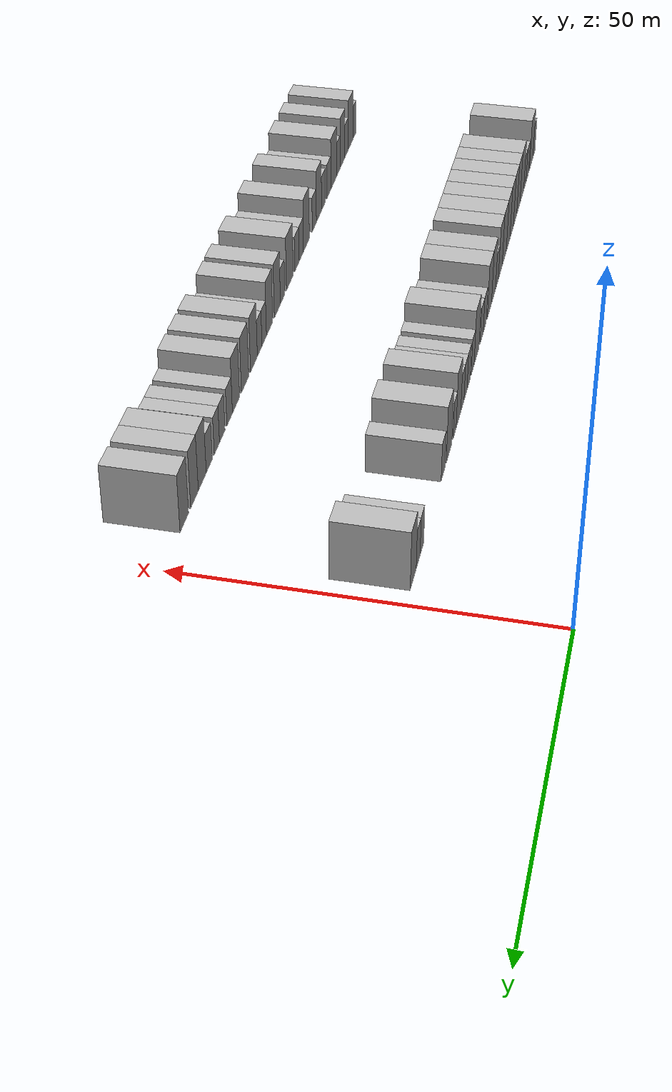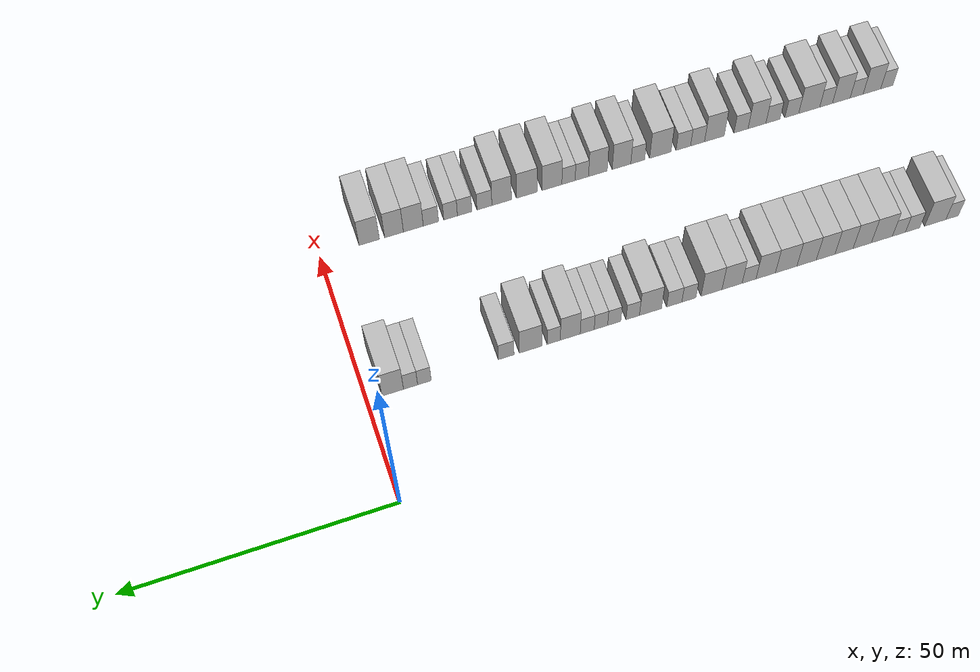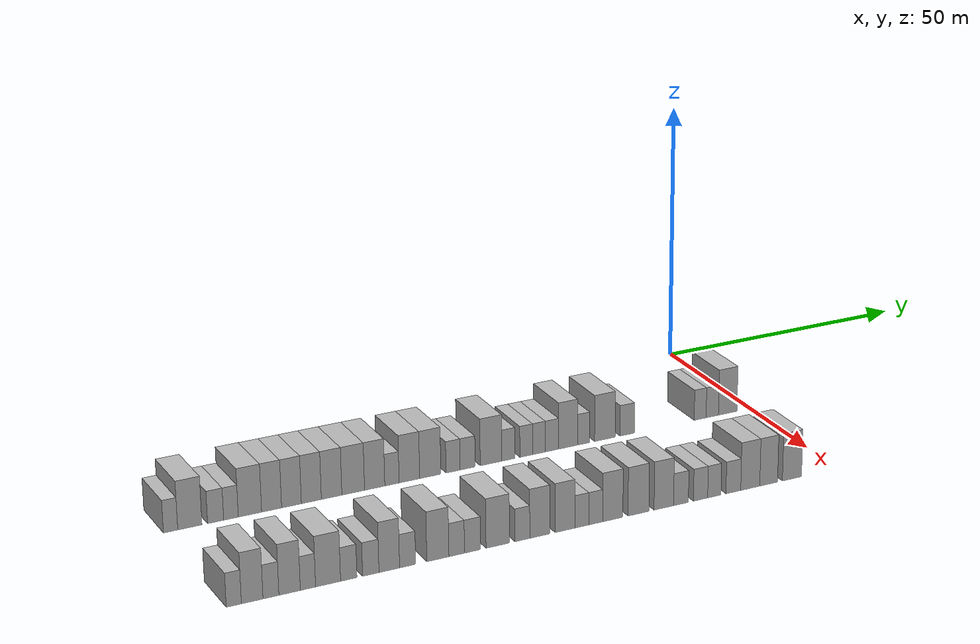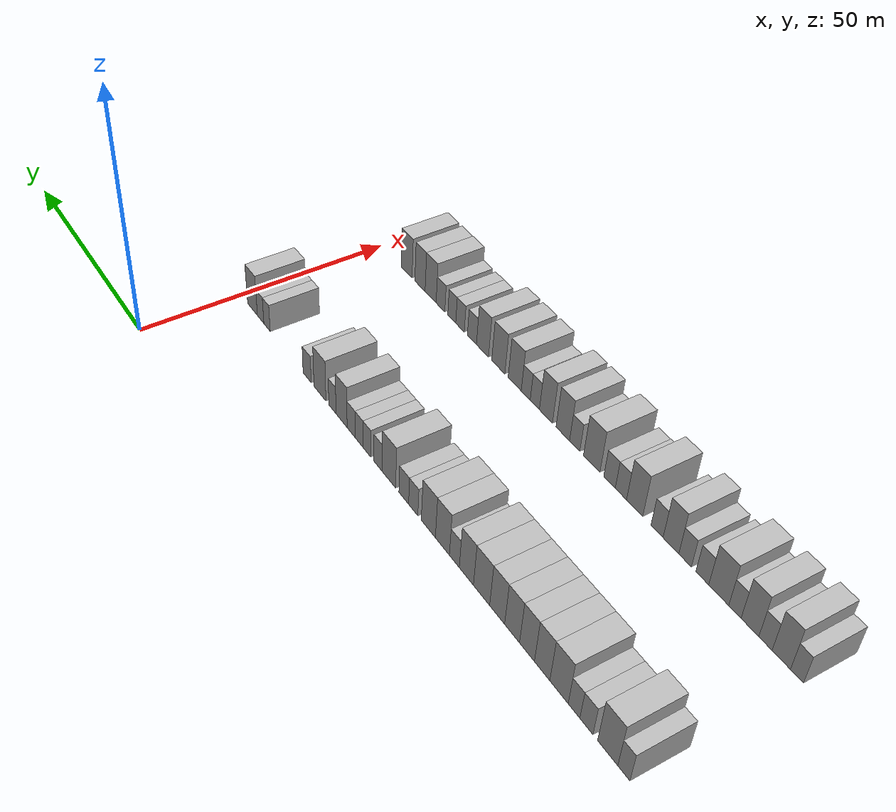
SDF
<sdf version="1.6">
 <world name="default">
  <model name="building_30">
   <static>1</static>
   <pose>25.0000 -113.0198 0 0.000000 0.000000 0.000000</pose>
   <link name="link">
    <pose>0 0 3.00 0 0 0</pose>
    <collision name="collision"><geometry><box><size>10.0000 2.5243 6.0000</size></box></geometry></collision>
    <visual name="visual">
     <cast_shadows>0</cast_shadows>
     <geometry><box><size>10.0000 2.5243 6.0000</size></box></geometry>
     <material>
      <script>
       <uri>model://HANNAS_wall/materials/scripts</uri>
       <uri>model://HANNAS_wall/materials/textures</uri>
       <name>vrc/HANNAS_wall</name>
      </script>
     </material>
    </visual>
   </link>
  </model>
  <model name="building_31">
   <static>1</static>
   <pose>25.0000 -109.6110 0 0.000000 0.000000 0.000000</pose>
   <link name="link">
    <pose>0 0 4.50 0 0 0</pose>
    <collision name="collision"><geometry><box><size>10.0000 4.2934 9.0000</size></box></geometry></collision>
    <visual name="visual">
     <cast_shadows>0</cast_shadows>
     <geometry><box><size>10.0000 4.2934 9.0000</size></box></geometry>
     <material>
      <script>
       <uri>model://HANNAS_wall/materials/scripts</uri>
       <uri>model://HANNAS_wall/materials/textures</uri>
       <name>vrc/HANNAS_wall</name>
      </script>
     </material>
    </visual>
   </link>
  </model>
  <model name="building_32">
   <static>1</static>
   <pose>25.0000 -105.0264 0 0.000000 0.000000 0.000000</pose>
   <link name="link">
    <pose>0 0 3.00 0 0 0</pose>
    <collision name="collision"><geometry><box><size>10.0000 2.8757 6.0000</size></box></geometry></collision>
    <visual name="visual">
     <cast_shadows>0</cast_shadows>
     <geometry><box><size>10.0000 2.8757 6.0000</size></box></geometry>
     <material>
      <script>
       <uri>model://HANNAS_wall/materials/scripts</uri>
       <uri>model://HANNAS_wall/materials/textures</uri>
       <name>vrc/HANNAS_wall</name>
      </script>
     </material>
    </visual>
   </link>
  </model>
  <model name="building_33">
   <static>1</static>
   <pose>25.0000 -102.2784 0 0.000000 0.000000 0.000000</pose>
   <link name="link">
    <pose>0 0 3.00 0 0 0</pose>
    <collision name="collision"><geometry><box><size>10.0000 2.6205 6.0000</size></box></geometry></collision>
    <visual name="visual">
     <cast_shadows>0</cast_shadows>
     <geometry><box><size>10.0000 2.6205 6.0000</size></box></geometry>
     <material>
      <script>
       <uri>model://HANNAS_wall/materials/scripts</uri>
       <uri>model://HANNAS_wall/materials/textures</uri>
       <name>vrc/HANNAS_wall</name>
      </script>
     </material>
    </visual>
   </link>
  </model>
  <model name="building_34">
   <static>1</static>
   <pose>25.0000 -98.8561 0 0.000000 0.000000 0.000000</pose>
   <link name="link">
    <pose>0 0 4.50 0 0 0</pose>
    <collision name="collision"><geometry><box><size>10.0000 4.2241 9.0000</size></box></geometry></collision>
    <visual name="visual">
     <cast_shadows>0</cast_shadows>
     <geometry><box><size>10.0000 4.2241 9.0000</size></box></geometry>
     <material>
      <script>
       <uri>model://HANNAS_wall/materials/scripts</uri>
       <uri>model://HANNAS_wall/materials/textures</uri>
       <name>vrc/HANNAS_wall</name>
      </script>
     </material>
    </visual>
   </link>
  </model>
  <model name="building_35">
   <static>1</static>
   <pose>25.0000 -94.9230 0 0.000000 0.000000 0.000000</pose>
   <link name="link">
    <pose>0 0 4.50 0 0 0</pose>
    <collision name="collision"><geometry><box><size>10.0000 3.6422 9.0000</size></box></geometry></collision>
    <visual name="visual">
     <cast_shadows>0</cast_shadows>
     <geometry><box><size>10.0000 3.6422 9.0000</size></box></geometry>
     <material>
      <script>
       <uri>model://HANNAS_wall/materials/scripts</uri>
       <uri>model://HANNAS_wall/materials/textures</uri>
       <name>vrc/HANNAS_wall</name>
      </script>
     </material>
    </visual>
   </link>
  </model>
  <model name="building_36">
   <static>1</static>
   <pose>25.0000 -91.2906 0 0.000000 0.000000 0.000000</pose>
   <link name="link">
    <pose>0 0 4.50 0 0 0</pose>
    <collision name="collision"><geometry><box><size>10.0000 3.6224 9.0000</size></box></geometry></collision>
    <visual name="visual">
     <cast_shadows>0</cast_shadows>
     <geometry><box><size>10.0000 3.6224 9.0000</size></box></geometry>
     <material>
      <script>
       <uri>model://HANNAS_wall/materials/scripts</uri>
       <uri>model://HANNAS_wall/materials/textures</uri>
       <name>vrc/HANNAS_wall</name>
      </script>
     </material>
    </visual>
   </link>
  </model>
  <model name="building_37">
   <static>1</static>
   <pose>25.0000 -87.6306 0 0.000000 0.000000 0.000000</pose>
   <link name="link">
    <pose>0 0 4.50 0 0 0</pose>
    <collision name="collision"><geometry><box><size>10.0000 3.6977 9.0000</size></box></geometry></collision>
    <visual name="visual">
     <cast_shadows>0</cast_shadows>
     <geometry><box><size>10.0000 3.6977 9.0000</size></box></geometry>
     <material>
      <script>
       <uri>model://HANNAS_wall/materials/scripts</uri>
       <uri>model://HANNAS_wall/materials/textures</uri>
       <name>vrc/HANNAS_wall</name>
      </script>
     </material>
    </visual>
   </link>
  </model>
  <model name="building_38">
   <static>1</static>
   <pose>25.0000 -83.8737 0 0.000000 0.000000 0.000000</pose>
   <link name="link">
    <pose>0 0 4.50 0 0 0</pose>
    <collision name="collision"><geometry><box><size>10.0000 3.8162 9.0000</size></box></geometry></collision>
    <visual name="visual">
     <cast_shadows>0</cast_shadows>
     <geometry><box><size>10.0000 3.8162 9.0000</size></box></geometry>
     <material>
      <script>
       <uri>model://HANNAS_wall/materials/scripts</uri>
       <uri>model://HANNAS_wall/materials/textures</uri>
       <name>vrc/HANNAS_wall</name>
      </script>
     </material>
    </visual>
   </link>
  </model>
  <model name="building_39">
   <static>1</static>
   <pose>25.0000 -79.8392 0 0.000000 0.000000 0.000000</pose>
   <link name="link">
    <pose>0 0 4.50 0 0 0</pose>
    <collision name="collision"><geometry><box><size>10.0000 4.2527 9.0000</size></box></geometry></collision>
    <visual name="visual">
     <cast_shadows>0</cast_shadows>
     <geometry><box><size>10.0000 4.2527 9.0000</size></box></geometry>
     <material>
      <script>
       <uri>model://HANNAS_wall/materials/scripts</uri>
       <uri>model://HANNAS_wall/materials/textures</uri>
       <name>vrc/HANNAS_wall</name>
      </script>
     </material>
    </visual>
   </link>
  </model>
  <model name="building_40">
   <static>1</static>
   <pose>25.0000 -75.8029 0 0.000000 0.000000 0.000000</pose>
   <link name="link">
    <pose>0 0 4.50 0 0 0</pose>
    <collision name="collision"><geometry><box><size>10.0000 3.8200 9.0000</size></box></geometry></collision>
    <visual name="visual">
     <cast_shadows>0</cast_shadows>
     <geometry><box><size>10.0000 3.8200 9.0000</size></box></geometry>
     <material>
      <script>
       <uri>model://HANNAS_wall/materials/scripts</uri>
       <uri>model://HANNAS_wall/materials/textures</uri>
       <name>vrc/HANNAS_wall</name>
      </script>
     </material>
    </visual>
   </link>
  </model>
  <model name="building_41">
   <static>1</static>
   <pose>25.0000 -72.5315 0 0.000000 0.000000 0.000000</pose>
   <link name="link">
    <pose>0 0 3.00 0 0 0</pose>
    <collision name="collision"><geometry><box><size>10.0000 2.7228 6.0000</size></box></geometry></collision>
    <visual name="visual">
     <cast_shadows>0</cast_shadows>
     <geometry><box><size>10.0000 2.7228 6.0000</size></box></geometry>
     <material>
      <script>
       <uri>model://HANNAS_wall/materials/scripts</uri>
       <uri>model://HANNAS_wall/materials/textures</uri>
       <name>vrc/HANNAS_wall</name>
      </script>
     </material>
    </visual>
   </link>
  </model>
  <model name="building_42">
   <static>1</static>
   <pose>25.0000 -69.2048 0 0.000000 0.000000 0.000000</pose>
   <link name="link">
    <pose>0 0 4.50 0 0 0</pose>
    <collision name="collision"><geometry><box><size>10.0000 3.9304 9.0000</size></box></geometry></collision>
    <visual name="visual">
     <cast_shadows>0</cast_shadows>
     <geometry><box><size>10.0000 3.9304 9.0000</size></box></geometry>
     <material>
      <script>
       <uri>model://HANNAS_wall/materials/scripts</uri>
       <uri>model://HANNAS_wall/materials/textures</uri>
       <name>vrc/HANNAS_wall</name>
      </script>
     </material>
    </visual>
   </link>
  </model>
  <model name="building_43">
   <static>1</static>
   <pose>25.0000 -65.2022 0 0.000000 0.000000 0.000000</pose>
   <link name="link">
    <pose>0 0 4.50 0 0 0</pose>
    <collision name="collision"><geometry><box><size>10.0000 4.0749 9.0000</size></box></geometry></collision>
    <visual name="visual">
     <cast_shadows>0</cast_shadows>
     <geometry><box><size>10.0000 4.0749 9.0000</size></box></geometry>
     <material>
      <script>
       <uri>model://HANNAS_wall/materials/scripts</uri>
       <uri>model://HANNAS_wall/materials/textures</uri>
       <name>vrc/HANNAS_wall</name>
      </script>
     </material>
    </visual>
   </link>
  </model>
  <model name="building_44">
   <static>1</static>
   <pose>25.0000 -60.7975 0 0.000000 0.000000 0.000000</pose>
   <link name="link">
    <pose>0 0 3.00 0 0 0</pose>
    <collision name="collision"><geometry><box><size>10.0000 2.7345 6.0000</size></box></geometry></collision>
    <visual name="visual">
     <cast_shadows>0</cast_shadows>
     <geometry><box><size>10.0000 2.7345 6.0000</size></box></geometry>
     <material>
      <script>
       <uri>model://HANNAS_wall/materials/scripts</uri>
       <uri>model://HANNAS_wall/materials/textures</uri>
       <name>vrc/HANNAS_wall</name>
      </script>
     </material>
    </visual>
   </link>
  </model>
  <model name="building_45">
   <static>1</static>
   <pose>25.0000 -57.9662 0 0.000000 0.000000 0.000000</pose>
   <link name="link">
    <pose>0 0 3.00 0 0 0</pose>
    <collision name="collision"><geometry><box><size>10.0000 2.9279 6.0000</size></box></geometry></collision>
    <visual name="visual">
     <cast_shadows>0</cast_shadows>
     <geometry><box><size>10.0000 2.9279 6.0000</size></box></geometry>
     <material>
      <script>
       <uri>model://HANNAS_wall/materials/scripts</uri>
       <uri>model://HANNAS_wall/materials/textures</uri>
       <name>vrc/HANNAS_wall</name>
      </script>
     </material>
    </visual>
   </link>
  </model>
  <model name="building_46">
   <static>1</static>
   <pose>25.0000 -53.3754 0 0.000000 0.000000 0.000000</pose>
   <link name="link">
    <pose>0 0 4.50 0 0 0</pose>
    <collision name="collision"><geometry><box><size>10.0000 4.2537 9.0000</size></box></geometry></collision>
    <visual name="visual">
     <cast_shadows>0</cast_shadows>
     <geometry><box><size>10.0000 4.2537 9.0000</size></box></geometry>
     <material>
      <script>
       <uri>model://HANNAS_wall/materials/scripts</uri>
       <uri>model://HANNAS_wall/materials/textures</uri>
       <name>vrc/HANNAS_wall</name>
      </script>
     </material>
    </visual>
   </link>
  </model>
  <model name="building_47">
   <static>1</static>
   <pose>25.0000 -49.9605 0 0.000000 0.000000 0.000000</pose>
   <link name="link">
    <pose>0 0 3.00 0 0 0</pose>
    <collision name="collision"><geometry><box><size>10.0000 2.5762 6.0000</size></box></geometry></collision>
    <visual name="visual">
     <cast_shadows>0</cast_shadows>
     <geometry><box><size>10.0000 2.5762 6.0000</size></box></geometry>
     <material>
      <script>
       <uri>model://HANNAS_wall/materials/scripts</uri>
       <uri>model://HANNAS_wall/materials/textures</uri>
       <name>vrc/HANNAS_wall</name>
      </script>
     </material>
    </visual>
   </link>
  </model>
  <model name="building_48">
   <static>1</static>
   <pose>25.0000 -46.4089 0 0.000000 0.000000 0.000000</pose>
   <link name="link">
    <pose>0 0 3.00 0 0 0</pose>
    <collision name="collision"><geometry><box><size>10.0000 2.5269 6.0000</size></box></geometry></collision>
    <visual name="visual">
     <cast_shadows>0</cast_shadows>
     <geometry><box><size>10.0000 2.5269 6.0000</size></box></geometry>
     <material>
      <script>
       <uri>model://HANNAS_wall/materials/scripts</uri>
       <uri>model://HANNAS_wall/materials/textures</uri>
       <name>vrc/HANNAS_wall</name>
      </script>
     </material>
    </visual>
   </link>
  </model>
  <model name="building_49">
   <static>1</static>
   <pose>25.0000 -43.8658 0 0.000000 0.000000 0.000000</pose>
   <link name="link">
    <pose>0 0 3.00 0 0 0</pose>
    <collision name="collision"><geometry><box><size>10.0000 2.5592 6.0000</size></box></geometry></collision>
    <visual name="visual">
     <cast_shadows>0</cast_shadows>
     <geometry><box><size>10.0000 2.5592 6.0000</size></box></geometry>
     <material>
      <script>
       <uri>model://HANNAS_wall/materials/scripts</uri>
       <uri>model://HANNAS_wall/materials/textures</uri>
       <name>vrc/HANNAS_wall</name>
      </script>
     </material>
    </visual>
   </link>
  </model>
  <model name="building_50">
   <static>1</static>
   <pose>25.0000 -41.2509 0 0.000000 0.000000 0.000000</pose>
   <link name="link">
    <pose>0 0 3.00 0 0 0</pose>
    <collision name="collision"><geometry><box><size>10.0000 2.6707 6.0000</size></box></geometry></collision>
    <visual name="visual">
     <cast_shadows>0</cast_shadows>
     <geometry><box><size>10.0000 2.6707 6.0000</size></box></geometry>
     <material>
      <script>
       <uri>model://HANNAS_wall/materials/scripts</uri>
       <uri>model://HANNAS_wall/materials/textures</uri>
       <name>vrc/HANNAS_wall</name>
      </script>
     </material>
    </visual>
   </link>
  </model>
  <model name="building_51">
   <static>1</static>
   <pose>25.0000 -38.0230 0 0.000000 0.000000 0.000000</pose>
   <link name="link">
    <pose>0 0 4.50 0 0 0</pose>
    <collision name="collision"><geometry><box><size>10.0000 3.7851 9.0000</size></box></geometry></collision>
    <visual name="visual">
     <cast_shadows>0</cast_shadows>
     <geometry><box><size>10.0000 3.7851 9.0000</size></box></geometry>
     <material>
      <script>
       <uri>model://HANNAS_wall/materials/scripts</uri>
       <uri>model://HANNAS_wall/materials/textures</uri>
       <name>vrc/HANNAS_wall</name>
      </script>
     </material>
    </visual>
   </link>
  </model>
  <model name="building_52">
   <static>1</static>
   <pose>25.0000 -34.8831 0 0.000000 0.000000 0.000000</pose>
   <link name="link">
    <pose>0 0 3.00 0 0 0</pose>
    <collision name="collision"><geometry><box><size>10.0000 2.4947 6.0000</size></box></geometry></collision>
    <visual name="visual">
     <cast_shadows>0</cast_shadows>
     <geometry><box><size>10.0000 2.4947 6.0000</size></box></geometry>
     <material>
      <script>
       <uri>model://HANNAS_wall/materials/scripts</uri>
       <uri>model://HANNAS_wall/materials/textures</uri>
       <name>vrc/HANNAS_wall</name>
      </script>
     </material>
    </visual>
   </link>
  </model>
  <model name="building_53">
   <static>1</static>
   <pose>25.0000 -30.5118 0 0.000000 0.000000 0.000000</pose>
   <link name="link">
    <pose>0 0 4.50 0 0 0</pose>
    <collision name="collision"><geometry><box><size>10.0000 4.2481 9.0000</size></box></geometry></collision>
    <visual name="visual">
     <cast_shadows>0</cast_shadows>
     <geometry><box><size>10.0000 4.2481 9.0000</size></box></geometry>
     <material>
      <script>
       <uri>model://HANNAS_wall/materials/scripts</uri>
       <uri>model://HANNAS_wall/materials/textures</uri>
       <name>vrc/HANNAS_wall</name>
      </script>
     </material>
    </visual>
   </link>
  </model>
  <model name="building_54">
   <static>1</static>
   <pose>25.0000 -25.9126 0 0.000000 0.000000 0.000000</pose>
   <link name="link">
    <pose>0 0 3.00 0 0 0</pose>
    <collision name="collision"><geometry><box><size>10.0000 2.9503 6.0000</size></box></geometry></collision>
    <visual name="visual">
     <cast_shadows>0</cast_shadows>
     <geometry><box><size>10.0000 2.9503 6.0000</size></box></geometry>
     <material>
      <script>
       <uri>model://HANNAS_wall/materials/scripts</uri>
       <uri>model://HANNAS_wall/materials/textures</uri>
       <name>vrc/HANNAS_wall</name>
      </script>
     </material>
    </visual>
   </link>
  </model>
  <model name="building_55">
   <static>1</static>
   <pose>25.0000 -10.6494 0 0.000000 0.000000 0.000000</pose>
   <link name="link">
    <pose>0 0 3.00 0 0 0</pose>
    <collision name="collision"><geometry><box><size>10.0000 2.5254 6.0000</size></box></geometry></collision>
    <visual name="visual">
     <cast_shadows>0</cast_shadows>
     <geometry><box><size>10.0000 2.5254 6.0000</size></box></geometry>
     <material>
      <script>
       <uri>model://HANNAS_wall/materials/scripts</uri>
       <uri>model://HANNAS_wall/materials/textures</uri>
       <name>vrc/HANNAS_wall</name>
      </script>
     </material>
    </visual>
   </link>
  </model>
  <model name="building_56">
   <static>1</static>
   <pose>25.0000 -8.0815 0 0.000000 0.000000 0.000000</pose>
   <link name="link">
    <pose>0 0 3.00 0 0 0</pose>
    <collision name="collision"><geometry><box><size>10.0000 2.6104 6.0000</size></box></geometry></collision>
    <visual name="visual">
     <cast_shadows>0</cast_shadows>
     <geometry><box><size>10.0000 2.6104 6.0000</size></box></geometry>
     <material>
      <script>
       <uri>model://HANNAS_wall/materials/scripts</uri>
       <uri>model://HANNAS_wall/materials/textures</uri>
       <name>vrc/HANNAS_wall</name>
      </script>
     </material>
    </visual>
   </link>
  </model>
  <model name="building_57">
   <static>1</static>
   <pose>25.0000 -4.7833 0 0.000000 0.000000 0.000000</pose>
   <link name="link">
    <pose>0 0 4.50 0 0 0</pose>
    <collision name="collision"><geometry><box><size>10.0000 3.9858 9.0000</size></box></geometry></collision>
    <visual name="visual">
     <cast_shadows>0</cast_shadows>
     <geometry><box><size>10.0000 3.9858 9.0000</size></box></geometry>
     <material>
      <script>
       <uri>model://HANNAS_wall/materials/scripts</uri>
       <uri>model://HANNAS_wall/materials/textures</uri>
       <name>vrc/HANNAS_wall</name>
      </script>
     </material>
    </visual>
   </link>
  </model>
  <model name="building_141">
   <static>1</static>
   <pose>55.0000 -113.0773 0 0.000000 0.000000 0.000000</pose>
   <link name="link">
    <pose>0 0 3.00 0 0 0</pose>
    <collision name="collision"><geometry><box><size>10.0000 2.5457 6.0000</size></box></geometry></collision>
    <visual name="visual">
     <cast_shadows>0</cast_shadows>
     <geometry><box><size>10.0000 2.5457 6.0000</size></box></geometry>
     <material>
      <script>
       <uri>model://HANNAS_wall/materials/scripts</uri>
       <uri>model://HANNAS_wall/materials/textures</uri>
       <name>vrc/HANNAS_wall</name>
      </script>
     </material>
    </visual>
   </link>
  </model>
  <model name="building_142">
   <static>1</static>
   <pose>55.0000 -109.9770 0 0.000000 0.000000 0.000000</pose>
   <link name="link">
    <pose>0 0 4.50 0 0 0</pose>
    <collision name="collision"><geometry><box><size>10.0000 3.6549 9.0000</size></box></geometry></collision>
    <visual name="visual">
     <cast_shadows>0</cast_shadows>
     <geometry><box><size>10.0000 3.6549 9.0000</size></box></geometry>
     <material>
      <script>
       <uri>model://HANNAS_wall/materials/scripts</uri>
       <uri>model://HANNAS_wall/materials/textures</uri>
       <name>vrc/HANNAS_wall</name>
      </script>
     </material>
    </visual>
   </link>
  </model>
  <model name="building_143">
   <static>1</static>
   <pose>55.0000 -106.7991 0 0.000000 0.000000 0.000000</pose>
   <link name="link">
    <pose>0 0 3.00 0 0 0</pose>
    <collision name="collision"><geometry><box><size>10.0000 2.7008 6.0000</size></box></geometry></collision>
    <visual name="visual">
     <cast_shadows>0</cast_shadows>
     <geometry><box><size>10.0000 2.7008 6.0000</size></box></geometry>
     <material>
      <script>
       <uri>model://HANNAS_wall/materials/scripts</uri>
       <uri>model://HANNAS_wall/materials/textures</uri>
       <name>vrc/HANNAS_wall</name>
      </script>
     </material>
    </visual>
   </link>
  </model>
  <model name="building_144">
   <static>1</static>
   <pose>55.0000 -103.6107 0 0.000000 0.000000 0.000000</pose>
   <link name="link">
    <pose>0 0 4.50 0 0 0</pose>
    <collision name="collision"><geometry><box><size>10.0000 3.6760 9.0000</size></box></geometry></collision>
    <visual name="visual">
     <cast_shadows>0</cast_shadows>
     <geometry><box><size>10.0000 3.6760 9.0000</size></box></geometry>
     <material>
      <script>
       <uri>model://HANNAS_wall/materials/scripts</uri>
       <uri>model://HANNAS_wall/materials/textures</uri>
       <name>vrc/HANNAS_wall</name>
      </script>
     </material>
    </visual>
   </link>
  </model>
  <model name="building_145">
   <static>1</static>
   <pose>55.0000 -100.4602 0 0.000000 0.000000 0.000000</pose>
   <link name="link">
    <pose>0 0 3.00 0 0 0</pose>
    <collision name="collision"><geometry><box><size>10.0000 2.6250 6.0000</size></box></geometry></collision>
    <visual name="visual">
     <cast_shadows>0</cast_shadows>
     <geometry><box><size>10.0000 2.6250 6.0000</size></box></geometry>
     <material>
      <script>
       <uri>model://HANNAS_wall/materials/scripts</uri>
       <uri>model://HANNAS_wall/materials/textures</uri>
       <name>vrc/HANNAS_wall</name>
      </script>
     </material>
    </visual>
   </link>
  </model>
  <model name="building_146">
   <static>1</static>
   <pose>55.0000 -96.9730 0 0.000000 0.000000 0.000000</pose>
   <link name="link">
    <pose>0 0 4.50 0 0 0</pose>
    <collision name="collision"><geometry><box><size>10.0000 4.3495 9.0000</size></box></geometry></collision>
    <visual name="visual">
     <cast_shadows>0</cast_shadows>
     <geometry><box><size>10.0000 4.3495 9.0000</size></box></geometry>
     <material>
      <script>
       <uri>model://HANNAS_wall/materials/scripts</uri>
       <uri>model://HANNAS_wall/materials/textures</uri>
       <name>vrc/HANNAS_wall</name>
      </script>
     </material>
    </visual>
   </link>
  </model>
  <model name="building_147">
   <static>1</static>
   <pose>55.0000 -93.3700 0 0.000000 0.000000 0.000000</pose>
   <link name="link">
    <pose>0 0 3.00 0 0 0</pose>
    <collision name="collision"><geometry><box><size>10.0000 2.8564 6.0000</size></box></geometry></collision>
    <visual name="visual">
     <cast_shadows>0</cast_shadows>
     <geometry><box><size>10.0000 2.8564 6.0000</size></box></geometry>
     <material>
      <script>
       <uri>model://HANNAS_wall/materials/scripts</uri>
       <uri>model://HANNAS_wall/materials/textures</uri>
       <name>vrc/HANNAS_wall</name>
      </script>
     </material>
    </visual>
   </link>
  </model>
  <model name="building_148">
   <static>1</static>
   <pose>55.0000 -89.4993 0 0.000000 0.000000 0.000000</pose>
   <link name="link">
    <pose>0 0 3.00 0 0 0</pose>
    <collision name="collision"><geometry><box><size>10.0000 2.8851 6.0000</size></box></geometry></collision>
    <visual name="visual">
     <cast_shadows>0</cast_shadows>
     <geometry><box><size>10.0000 2.8851 6.0000</size></box></geometry>
     <material>
      <script>
       <uri>model://HANNAS_wall/materials/scripts</uri>
       <uri>model://HANNAS_wall/materials/textures</uri>
       <name>vrc/HANNAS_wall</name>
      </script>
     </material>
    </visual>
   </link>
  </model>
  <model name="building_149">
   <static>1</static>
   <pose>55.0000 -86.2319 0 0.000000 0.000000 0.000000</pose>
   <link name="link">
    <pose>0 0 4.50 0 0 0</pose>
    <collision name="collision"><geometry><box><size>10.0000 3.6498 9.0000</size></box></geometry></collision>
    <visual name="visual">
     <cast_shadows>0</cast_shadows>
     <geometry><box><size>10.0000 3.6498 9.0000</size></box></geometry>
     <material>
      <script>
       <uri>model://HANNAS_wall/materials/scripts</uri>
       <uri>model://HANNAS_wall/materials/textures</uri>
       <name>vrc/HANNAS_wall</name>
      </script>
     </material>
    </visual>
   </link>
  </model>
  <model name="building_150">
   <static>1</static>
   <pose>55.0000 -82.9696 0 0.000000 0.000000 0.000000</pose>
   <link name="link">
    <pose>0 0 3.00 0 0 0</pose>
    <collision name="collision"><geometry><box><size>10.0000 2.8747 6.0000</size></box></geometry></collision>
    <visual name="visual">
     <cast_shadows>0</cast_shadows>
     <geometry><box><size>10.0000 2.8747 6.0000</size></box></geometry>
     <material>
      <script>
       <uri>model://HANNAS_wall/materials/scripts</uri>
       <uri>model://HANNAS_wall/materials/textures</uri>
       <name>vrc/HANNAS_wall</name>
      </script>
     </material>
    </visual>
   </link>
  </model>
  <model name="building_151">
   <static>1</static>
   <pose>55.0000 -77.5376 0 0.000000 0.000000 0.000000</pose>
   <link name="link">
    <pose>0 0 4.50 0 0 0</pose>
    <collision name="collision"><geometry><box><size>10.0000 3.9894 9.0000</size></box></geometry></collision>
    <visual name="visual">
     <cast_shadows>0</cast_shadows>
     <geometry><box><size>10.0000 3.9894 9.0000</size></box></geometry>
     <material>
      <script>
       <uri>model://HANNAS_wall/materials/scripts</uri>
       <uri>model://HANNAS_wall/materials/textures</uri>
       <name>vrc/HANNAS_wall</name>
      </script>
     </material>
    </visual>
   </link>
  </model>
  <model name="building_152">
   <static>1</static>
   <pose>55.0000 -74.1288 0 0.000000 0.000000 0.000000</pose>
   <link name="link">
    <pose>0 0 3.00 0 0 0</pose>
    <collision name="collision"><geometry><box><size>10.0000 2.8282 6.0000</size></box></geometry></collision>
    <visual name="visual">
     <cast_shadows>0</cast_shadows>
     <geometry><box><size>10.0000 2.8282 6.0000</size></box></geometry>
     <material>
      <script>
       <uri>model://HANNAS_wall/materials/scripts</uri>
       <uri>model://HANNAS_wall/materials/textures</uri>
       <name>vrc/HANNAS_wall</name>
      </script>
     </material>
    </visual>
   </link>
  </model>
  <model name="building_153">
   <static>1</static>
   <pose>55.0000 -71.2451 0 0.000000 0.000000 0.000000</pose>
   <link name="link">
    <pose>0 0 3.00 0 0 0</pose>
    <collision name="collision"><geometry><box><size>10.0000 2.9392 6.0000</size></box></geometry></collision>
    <visual name="visual">
     <cast_shadows>0</cast_shadows>
     <geometry><box><size>10.0000 2.9392 6.0000</size></box></geometry>
     <material>
      <script>
       <uri>model://HANNAS_wall/materials/scripts</uri>
       <uri>model://HANNAS_wall/materials/textures</uri>
       <name>vrc/HANNAS_wall</name>
      </script>
     </material>
    </visual>
   </link>
  </model>
  <model name="building_154">
   <static>1</static>
   <pose>55.0000 -66.6125 0 0.000000 0.000000 0.000000</pose>
   <link name="link">
    <pose>0 0 4.50 0 0 0</pose>
    <collision name="collision"><geometry><box><size>10.0000 4.3260 9.0000</size></box></geometry></collision>
    <visual name="visual">
     <cast_shadows>0</cast_shadows>
     <geometry><box><size>10.0000 4.3260 9.0000</size></box></geometry>
     <material>
      <script>
       <uri>model://HANNAS_wall/materials/scripts</uri>
       <uri>model://HANNAS_wall/materials/textures</uri>
       <name>vrc/HANNAS_wall</name>
      </script>
     </material>
    </visual>
   </link>
  </model>
  <model name="building_155">
   <static>1</static>
   <pose>55.0000 -62.0629 0 0.000000 0.000000 0.000000</pose>
   <link name="link">
    <pose>0 0 3.00 0 0 0</pose>
    <collision name="collision"><geometry><box><size>10.0000 2.7733 6.0000</size></box></geometry></collision>
    <visual name="visual">
     <cast_shadows>0</cast_shadows>
     <geometry><box><size>10.0000 2.7733 6.0000</size></box></geometry>
     <material>
      <script>
       <uri>model://HANNAS_wall/materials/scripts</uri>
       <uri>model://HANNAS_wall/materials/textures</uri>
       <name>vrc/HANNAS_wall</name>
      </script>
     </material>
    </visual>
   </link>
  </model>
  <model name="building_156">
   <static>1</static>
   <pose>55.0000 -58.8138 0 0.000000 0.000000 0.000000</pose>
   <link name="link">
    <pose>0 0 4.50 0 0 0</pose>
    <collision name="collision"><geometry><box><size>10.0000 3.7249 9.0000</size></box></geometry></collision>
    <visual name="visual">
     <cast_shadows>0</cast_shadows>
     <geometry><box><size>10.0000 3.7249 9.0000</size></box></geometry>
     <material>
      <script>
       <uri>model://HANNAS_wall/materials/scripts</uri>
       <uri>model://HANNAS_wall/materials/textures</uri>
       <name>vrc/HANNAS_wall</name>
      </script>
     </material>
    </visual>
   </link>
  </model>
  <model name="building_157">
   <static>1</static>
   <pose>55.0000 -54.0940 0 0.000000 0.000000 0.000000</pose>
   <link name="link">
    <pose>0 0 4.50 0 0 0</pose>
    <collision name="collision"><geometry><box><size>10.0000 3.7146 9.0000</size></box></geometry></collision>
    <visual name="visual">
     <cast_shadows>0</cast_shadows>
     <geometry><box><size>10.0000 3.7146 9.0000</size></box></geometry>
     <material>
      <script>
       <uri>model://HANNAS_wall/materials/scripts</uri>
       <uri>model://HANNAS_wall/materials/textures</uri>
       <name>vrc/HANNAS_wall</name>
      </script>
     </material>
    </visual>
   </link>
  </model>
  <model name="building_158">
   <static>1</static>
   <pose>55.0000 -50.9092 0 0.000000 0.000000 0.000000</pose>
   <link name="link">
    <pose>0 0 3.00 0 0 0</pose>
    <collision name="collision"><geometry><box><size>10.0000 2.6550 6.0000</size></box></geometry></collision>
    <visual name="visual">
     <cast_shadows>0</cast_shadows>
     <geometry><box><size>10.0000 2.6550 6.0000</size></box></geometry>
     <material>
      <script>
       <uri>model://HANNAS_wall/materials/scripts</uri>
       <uri>model://HANNAS_wall/materials/textures</uri>
       <name>vrc/HANNAS_wall</name>
      </script>
     </material>
    </visual>
   </link>
  </model>
  <model name="building_159">
   <static>1</static>
   <pose>55.0000 -48.2634 0 0.000000 0.000000 0.000000</pose>
   <link name="link">
    <pose>0 0 3.00 0 0 0</pose>
    <collision name="collision"><geometry><box><size>10.0000 2.6366 6.0000</size></box></geometry></collision>
    <visual name="visual">
     <cast_shadows>0</cast_shadows>
     <geometry><box><size>10.0000 2.6366 6.0000</size></box></geometry>
     <material>
      <script>
       <uri>model://HANNAS_wall/materials/scripts</uri>
       <uri>model://HANNAS_wall/materials/textures</uri>
       <name>vrc/HANNAS_wall</name>
      </script>
     </material>
    </visual>
   </link>
  </model>
  <model name="building_160">
   <static>1</static>
   <pose>55.0000 -44.9935 0 0.000000 0.000000 0.000000</pose>
   <link name="link">
    <pose>0 0 4.50 0 0 0</pose>
    <collision name="collision"><geometry><box><size>10.0000 3.9033 9.0000</size></box></geometry></collision>
    <visual name="visual">
     <cast_shadows>0</cast_shadows>
     <geometry><box><size>10.0000 3.9033 9.0000</size></box></geometry>
     <material>
      <script>
       <uri>model://HANNAS_wall/materials/scripts</uri>
       <uri>model://HANNAS_wall/materials/textures</uri>
       <name>vrc/HANNAS_wall</name>
      </script>
     </material>
    </visual>
   </link>
  </model>
  <model name="building_161">
   <static>1</static>
   <pose>55.0000 -40.0229 0 0.000000 0.000000 0.000000</pose>
   <link name="link">
    <pose>0 0 4.50 0 0 0</pose>
    <collision name="collision"><geometry><box><size>10.0000 4.0378 9.0000</size></box></geometry></collision>
    <visual name="visual">
     <cast_shadows>0</cast_shadows>
     <geometry><box><size>10.0000 4.0378 9.0000</size></box></geometry>
     <material>
      <script>
       <uri>model://HANNAS_wall/materials/scripts</uri>
       <uri>model://HANNAS_wall/materials/textures</uri>
       <name>vrc/HANNAS_wall</name>
      </script>
     </material>
    </visual>
   </link>
  </model>
  <model name="building_162">
   <static>1</static>
   <pose>55.0000 -35.0914 0 0.000000 0.000000 0.000000</pose>
   <link name="link">
    <pose>0 0 4.50 0 0 0</pose>
    <collision name="collision"><geometry><box><size>10.0000 3.8253 9.0000</size></box></geometry></collision>
    <visual name="visual">
     <cast_shadows>0</cast_shadows>
     <geometry><box><size>10.0000 3.8253 9.0000</size></box></geometry>
     <material>
      <script>
       <uri>model://HANNAS_wall/materials/scripts</uri>
       <uri>model://HANNAS_wall/materials/textures</uri>
       <name>vrc/HANNAS_wall</name>
      </script>
     </material>
    </visual>
   </link>
  </model>
  <model name="building_163">
   <static>1</static>
   <pose>55.0000 -31.7204 0 0.000000 0.000000 0.000000</pose>
   <link name="link">
    <pose>0 0 3.00 0 0 0</pose>
    <collision name="collision"><geometry><box><size>10.0000 2.9167 6.0000</size></box></geometry></collision>
    <visual name="visual">
     <cast_shadows>0</cast_shadows>
     <geometry><box><size>10.0000 2.9167 6.0000</size></box></geometry>
     <material>
      <script>
       <uri>model://HANNAS_wall/materials/scripts</uri>
       <uri>model://HANNAS_wall/materials/textures</uri>
       <name>vrc/HANNAS_wall</name>
      </script>
     </material>
    </visual>
   </link>
  </model>
  <model name="building_164">
   <static>1</static>
   <pose>55.0000 -27.8553 0 0.000000 0.000000 0.000000</pose>
   <link name="link">
    <pose>0 0 3.00 0 0 0</pose>
    <collision name="collision"><geometry><box><size>10.0000 2.8135 6.0000</size></box></geometry></collision>
    <visual name="visual">
     <cast_shadows>0</cast_shadows>
     <geometry><box><size>10.0000 2.8135 6.0000</size></box></geometry>
     <material>
      <script>
       <uri>model://HANNAS_wall/materials/scripts</uri>
       <uri>model://HANNAS_wall/materials/textures</uri>
       <name>vrc/HANNAS_wall</name>
      </script>
     </material>
    </visual>
   </link>
  </model>
  <model name="building_165">
   <static>1</static>
   <pose>55.0000 -25.1209 0 0.000000 0.000000 0.000000</pose>
   <link name="link">
    <pose>0 0 3.00 0 0 0</pose>
    <collision name="collision"><geometry><box><size>10.0000 2.6554 6.0000</size></box></geometry></collision>
    <visual name="visual">
     <cast_shadows>0</cast_shadows>
     <geometry><box><size>10.0000 2.6554 6.0000</size></box></geometry>
     <material>
      <script>
       <uri>model://HANNAS_wall/materials/scripts</uri>
       <uri>model://HANNAS_wall/materials/textures</uri>
       <name>vrc/HANNAS_wall</name>
      </script>
     </material>
    </visual>
   </link>
  </model>
  <model name="building_166">
   <static>1</static>
   <pose>55.0000 -21.3110 0 0.000000 0.000000 0.000000</pose>
   <link name="link">
    <pose>0 0 3.00 0 0 0</pose>
    <collision name="collision"><geometry><box><size>10.0000 2.9642 6.0000</size></box></geometry></collision>
    <visual name="visual">
     <cast_shadows>0</cast_shadows>
     <geometry><box><size>10.0000 2.9642 6.0000</size></box></geometry>
     <material>
      <script>
       <uri>model://HANNAS_wall/materials/scripts</uri>
       <uri>model://HANNAS_wall/materials/textures</uri>
       <name>vrc/HANNAS_wall</name>
      </script>
     </material>
    </visual>
   </link>
  </model>
  <model name="building_167">
   <static>1</static>
   <pose>55.0000 -17.9115 0 0.000000 0.000000 0.000000</pose>
   <link name="link">
    <pose>0 0 4.50 0 0 0</pose>
    <collision name="collision"><geometry><box><size>10.0000 3.8348 9.0000</size></box></geometry></collision>
    <visual name="visual">
     <cast_shadows>0</cast_shadows>
     <geometry><box><size>10.0000 3.8348 9.0000</size></box></geometry>
     <material>
      <script>
       <uri>model://HANNAS_wall/materials/scripts</uri>
       <uri>model://HANNAS_wall/materials/textures</uri>
       <name>vrc/HANNAS_wall</name>
      </script>
     </material>
    </visual>
   </link>
  </model>
  <model name="building_168">
   <static>1</static>
   <pose>55.0000 -14.1855 0 0.000000 0.000000 0.000000</pose>
   <link name="link">
    <pose>0 0 4.50 0 0 0</pose>
    <collision name="collision"><geometry><box><size>10.0000 3.6172 9.0000</size></box></geometry></collision>
    <visual name="visual">
     <cast_shadows>0</cast_shadows>
     <geometry><box><size>10.0000 3.6172 9.0000</size></box></geometry>
     <material>
      <script>
       <uri>model://HANNAS_wall/materials/scripts</uri>
       <uri>model://HANNAS_wall/materials/textures</uri>
       <name>vrc/HANNAS_wall</name>
      </script>
     </material>
    </visual>
   </link>
  </model>
  <model name="building_169">
   <static>1</static>
   <pose>55.0000 -9.4189 0 0.000000 0.000000 0.000000</pose>
   <link name="link">
    <pose>0 0 4.50 0 0 0</pose>
    <collision name="collision"><geometry><box><size>10.0000 3.9160 9.0000</size></box></geometry></collision>
    <visual name="visual">
     <cast_shadows>0</cast_shadows>
     <geometry><box><size>10.0000 3.9160 9.0000</size></box></geometry>
     <material>
      <script>
       <uri>model://HANNAS_wall/materials/scripts</uri>
       <uri>model://HANNAS_wall/materials/textures</uri>
       <name>vrc/HANNAS_wall</name>
      </script>
     </material>
    </visual>
   </link>
  </model>
 </world>
</sdf>
